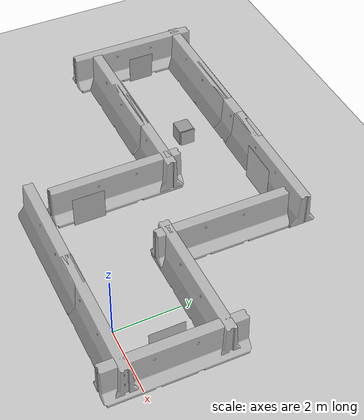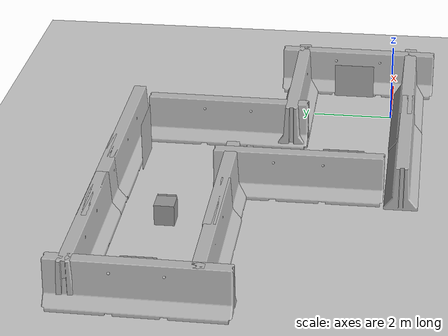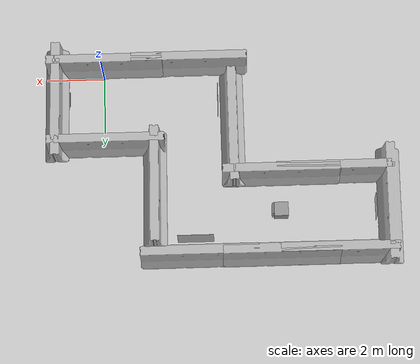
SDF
<sdf version="1.7">
 <world name="default">
  <light name="sun" type="directional">
   <pose>0 0 10 0 -0 0</pose>
   <diffuse>0.8 0.8 0.8 1</diffuse>
   <specular>0.2 0.2 0.2 1</specular>
   <attenuation>
    <range>1000</range>
    <constant>0.9</constant>
    <linear>0.01</linear>
    <quadratic>0.001</quadratic>
   </attenuation>
   <direction>-0.5 0.1 -0.9</direction>
   <spot><inner_angle>0</inner_angle><outer_angle>0</outer_angle><falloff>0</falloff></spot>
  </light>
  <model name="ground_plane">
   <static>1</static>
   <link name="link">
    <collision name="collision">
     <geometry><plane><normal>0 0 1</normal><size>100 100</size></plane></geometry>
     <surface>
      <contact><collide_bitmask>65535</collide_bitmask></contact>
      <friction><ode><mu>100</mu><mu2>50</mu2></ode></friction>
     </surface>
    </collision>
    <visual name="visual">
     <cast_shadows>0</cast_shadows>
     <geometry><plane><normal>0 0 1</normal><size>100 100</size></plane></geometry>
     <material>
      <script><uri>file://media/materials/scripts/gazebo.material</uri><name>Gazebo/Grey</name></script>
     </material>
    </visual>
   </link>
  </model>
  <gravity>0 0 -9.8</gravity>
  <magnetic_field>6e-06 2.3e-05 -4.2e-05</magnetic_field>
  <atmosphere type="adiabatic"/>
  <physics type="ode">
   <max_step_size>0.001</max_step_size>
   <real_time_factor>1</real_time_factor>
   <real_time_update_rate>1000</real_time_update_rate>
  </physics>
  <scene><ambient>0.4 0.4 0.4 1</ambient><background>0.7 0.7 0.7 1</background><shadows>1</shadows></scene>
  <spherical_coordinates>
   <surface_model>EARTH_WGS84</surface_model>
   <latitude_deg>0</latitude_deg>
   <longitude_deg>0</longitude_deg>
   <elevation>0</elevation>
   <heading_deg>0</heading_deg>
  </spherical_coordinates>
  <model name="jersey_barrier">
   <static>1</static>
   <link name="link">
    <visual name="visual">
     <geometry><mesh><uri>model://jersey_barrier/meshes/jersey_barrier.dae</uri></mesh></geometry>
    </visual>
    <collision name="upright">
     <pose>0 0 0.5715 0 -0 0</pose>
     <geometry><box><size>4.06542 0.3063 1.143</size></box></geometry>
    </collision>
    <collision name="base">
     <pose>0 0 0.032258 0 -0 0</pose>
     <geometry><box><size>4.06542 0.8107 0.064516</size></box></geometry>
    </collision>
    <collision name="base2">
     <pose>0 0 0.1 0 -0 0</pose>
     <geometry><box><size>4.06542 0.65 0.1</size></box></geometry>
    </collision>
    <collision name="base3">
     <pose>0 0 0.2 0 -0 0</pose>
     <geometry><box><size>4.06542 0.5 0.1</size></box></geometry>
    </collision>
    <collision name="left-angle">
     <pose>0 -0.224 0.2401 0.9 -0 0</pose>
     <geometry><box><size>4.06542 0.5 0.064516</size></box></geometry>
    </collision>
    <collision name="right-angle">
     <pose>0 0.224 0.2401 -0.9 0 0</pose>
     <geometry><box><size>4.06542 0.5 0.064516</size></box></geometry>
    </collision>
   </link>
   <pose>-0.047595 -0.431139 0 0 -0 0</pose>
  </model>
  <model name="jersey_barrier_0">
   <static>1</static>
   <link name="link">
    <visual name="visual">
     <geometry><mesh><uri>model://jersey_barrier/meshes/jersey_barrier.dae</uri></mesh></geometry>
    </visual>
    <collision name="upright">
     <pose>0 0 0.5715 0 -0 0</pose>
     <geometry><box><size>4.06542 0.3063 1.143</size></box></geometry>
    </collision>
    <collision name="base">
     <pose>0 0 0.032258 0 -0 0</pose>
     <geometry><box><size>4.06542 0.8107 0.064516</size></box></geometry>
    </collision>
    <collision name="base2">
     <pose>0 0 0.1 0 -0 0</pose>
     <geometry><box><size>4.06542 0.65 0.1</size></box></geometry>
    </collision>
    <collision name="base3">
     <pose>0 0 0.2 0 -0 0</pose>
     <geometry><box><size>4.06542 0.5 0.1</size></box></geometry>
    </collision>
    <collision name="left-angle">
     <pose>0 -0.224 0.2401 0.9 -0 0</pose>
     <geometry><box><size>4.06542 0.5 0.064516</size></box></geometry>
    </collision>
    <collision name="right-angle">
     <pose>0 0.224 0.2401 -0.9 0 0</pose>
     <geometry><box><size>4.06542 0.5 0.064516</size></box></geometry>
    </collision>
   </link>
   <pose>-0.051758 2.43561 0 0 -0 0</pose>
  </model>
  <model name="jersey_barrier_2_clone">
   <static>1</static>
   <link name="link">
    <visual name="visual">
     <geometry><mesh><uri>model://jersey_barrier/meshes/jersey_barrier.dae</uri></mesh></geometry>
    </visual>
    <collision name="upright">
     <pose>0 0 0.5715 0 -0 0</pose>
     <geometry><box><size>4.06542 0.3063 1.143</size></box></geometry>
    </collision>
    <collision name="base">
     <pose>0 0 0.032258 0 -0 0</pose>
     <geometry><box><size>4.06542 0.8107 0.064516</size></box></geometry>
    </collision>
    <collision name="base2">
     <pose>0 0 0.1 0 -0 0</pose>
     <geometry><box><size>4.06542 0.65 0.1</size></box></geometry>
    </collision>
    <collision name="base3">
     <pose>0 0 0.2 0 -0 0</pose>
     <geometry><box><size>4.06542 0.5 0.1</size></box></geometry>
    </collision>
    <collision name="left-angle">
     <pose>0 -0.224 0.2401 0.9 -0 0</pose>
     <geometry><box><size>4.06542 0.5 0.064516</size></box></geometry>
    </collision>
    <collision name="right-angle">
     <pose>0 0.224 0.2401 -0.9 0 0</pose>
     <geometry><box><size>4.06542 0.5 0.064516</size></box></geometry>
    </collision>
   </link>
   <pose>-1.71045 4.06927 0 0 0 -1.58175</pose>
  </model>
  <model name="jersey_barrier_clone">
   <static>1</static>
   <link name="link">
    <visual name="visual">
     <geometry><mesh><uri>model://jersey_barrier/meshes/jersey_barrier.dae</uri></mesh></geometry>
    </visual>
    <collision name="upright">
     <pose>0 0 0.5715 0 -0 0</pose>
     <geometry><box><size>4.06542 0.3063 1.143</size></box></geometry>
    </collision>
    <collision name="base">
     <pose>0 0 0.032258 0 -0 0</pose>
     <geometry><box><size>4.06542 0.8107 0.064516</size></box></geometry>
    </collision>
    <collision name="base2">
     <pose>0 0 0.1 0 -0 0</pose>
     <geometry><box><size>4.06542 0.65 0.1</size></box></geometry>
    </collision>
    <collision name="base3">
     <pose>0 0 0.2 0 -0 0</pose>
     <geometry><box><size>4.06542 0.5 0.1</size></box></geometry>
    </collision>
    <collision name="left-angle">
     <pose>0 -0.224 0.2401 0.9 -0 0</pose>
     <geometry><box><size>4.06542 0.5 0.064516</size></box></geometry>
    </collision>
    <collision name="right-angle">
     <pose>0 0.224 0.2401 -0.9 0 0</pose>
     <geometry><box><size>4.06542 0.5 0.064516</size></box></geometry>
    </collision>
   </link>
   <pose>-2.98534 -0.445537 0 0 -0 0</pose>
  </model>
  <model name="jersey_barrier_clone_clone">
   <static>1</static>
   <link name="link">
    <visual name="visual">
     <geometry><mesh><uri>model://jersey_barrier/meshes/jersey_barrier.dae</uri></mesh></geometry>
    </visual>
    <collision name="upright">
     <pose>0 0 0.5715 0 -0 0</pose>
     <geometry><box><size>4.06542 0.3063 1.143</size></box></geometry>
    </collision>
    <collision name="base">
     <pose>0 0 0.032258 0 -0 0</pose>
     <geometry><box><size>4.06542 0.8107 0.064516</size></box></geometry>
    </collision>
    <collision name="base2">
     <pose>0 0 0.1 0 -0 0</pose>
     <geometry><box><size>4.06542 0.65 0.1</size></box></geometry>
    </collision>
    <collision name="base3">
     <pose>0 0 0.2 0 -0 0</pose>
     <geometry><box><size>4.06542 0.5 0.1</size></box></geometry>
    </collision>
    <collision name="left-angle">
     <pose>0 -0.224 0.2401 0.9 -0 0</pose>
     <geometry><box><size>4.06542 0.5 0.064516</size></box></geometry>
    </collision>
    <collision name="right-angle">
     <pose>0 0.224 0.2401 -0.9 0 0</pose>
     <geometry><box><size>4.06542 0.5 0.064516</size></box></geometry>
    </collision>
   </link>
   <pose>-3.21683 6.44623 0 0 -0 0</pose>
  </model>
  <model name="jersey_barrier_2_clone_clone">
   <static>1</static>
   <link name="link">
    <visual name="visual">
     <geometry><mesh><uri>model://jersey_barrier/meshes/jersey_barrier.dae</uri></mesh></geometry>
    </visual>
    <collision name="upright">
     <pose>0 0 0.5715 0 -0 0</pose>
     <geometry><box><size>4.06542 0.3063 1.143</size></box></geometry>
    </collision>
    <collision name="base">
     <pose>0 0 0.032258 0 -0 0</pose>
     <geometry><box><size>4.06542 0.8107 0.064516</size></box></geometry>
    </collision>
    <collision name="base2">
     <pose>0 0 0.1 0 -0 0</pose>
     <geometry><box><size>4.06542 0.65 0.1</size></box></geometry>
    </collision>
    <collision name="base3">
     <pose>0 0 0.2 0 -0 0</pose>
     <geometry><box><size>4.06542 0.5 0.1</size></box></geometry>
    </collision>
    <collision name="left-angle">
     <pose>0 -0.224 0.2401 0.9 -0 0</pose>
     <geometry><box><size>4.06542 0.5 0.064516</size></box></geometry>
    </collision>
    <collision name="right-angle">
     <pose>0 0.224 0.2401 -0.9 0 0</pose>
     <geometry><box><size>4.06542 0.5 0.064516</size></box></geometry>
    </collision>
   </link>
   <pose>1.66281 0.970116 0 0 0 -1.58175</pose>
  </model>
  <model name="jersey_barrier_2_clone_clone_0">
   <static>1</static>
   <link name="link">
    <visual name="visual">
     <geometry><mesh><uri>model://jersey_barrier/meshes/jersey_barrier.dae</uri></mesh></geometry>
    </visual>
    <collision name="upright">
     <pose>0 0 0.5715 0 -0 0</pose>
     <geometry><box><size>4.06542 0.3063 1.143</size></box></geometry>
    </collision>
    <collision name="base">
     <pose>0 0 0.032258 0 -0 0</pose>
     <geometry><box><size>4.06542 0.8107 0.064516</size></box></geometry>
    </collision>
    <collision name="base2">
     <pose>0 0 0.1 0 -0 0</pose>
     <geometry><box><size>4.06542 0.65 0.1</size></box></geometry>
    </collision>
    <collision name="base3">
     <pose>0 0 0.2 0 -0 0</pose>
     <geometry><box><size>4.06542 0.5 0.1</size></box></geometry>
    </collision>
    <collision name="left-angle">
     <pose>0 -0.224 0.2401 0.9 -0 0</pose>
     <geometry><box><size>4.06542 0.5 0.064516</size></box></geometry>
    </collision>
    <collision name="right-angle">
     <pose>0 0.224 0.2401 -0.9 0 0</pose>
     <geometry><box><size>4.06542 0.5 0.064516</size></box></geometry>
    </collision>
   </link>
   <pose>-4.45139 2.02043 0 0 0 -1.57072</pose>
  </model>
  <model name="jersey_barrier_clone_clone_clone">
   <static>1</static>
   <link name="link">
    <visual name="visual">
     <geometry><mesh><uri>model://jersey_barrier/meshes/jersey_barrier.dae</uri></mesh></geometry>
    </visual>
    <collision name="upright">
     <pose>0 0 0.5715 0 -0 0</pose>
     <geometry><box><size>4.06542 0.3063 1.143</size></box></geometry>
    </collision>
    <collision name="base">
     <pose>0 0 0.032258 0 -0 0</pose>
     <geometry><box><size>4.06542 0.8107 0.064516</size></box></geometry>
    </collision>
    <collision name="base2">
     <pose>0 0 0.1 0 -0 0</pose>
     <geometry><box><size>4.06542 0.65 0.1</size></box></geometry>
    </collision>
    <collision name="base3">
     <pose>0 0 0.2 0 -0 0</pose>
     <geometry><box><size>4.06542 0.5 0.1</size></box></geometry>
    </collision>
    <collision name="left-angle">
     <pose>0 -0.224 0.2401 0.9 -0 0</pose>
     <geometry><box><size>4.06542 0.5 0.064516</size></box></geometry>
    </collision>
    <collision name="right-angle">
     <pose>0 0.224 0.2401 -0.9 0 0</pose>
     <geometry><box><size>4.06542 0.5 0.064516</size></box></geometry>
    </collision>
   </link>
   <pose>-6.07248 3.63721 0 0 -0 0</pose>
  </model>
  <model name="jersey_barrier_clone_clone_clone_0">
   <static>1</static>
   <link name="link">
    <visual name="visual">
     <geometry><mesh><uri>model://jersey_barrier/meshes/jersey_barrier.dae</uri></mesh></geometry>
    </visual>
    <collision name="upright">
     <pose>0 0 0.5715 0 -0 0</pose>
     <geometry><box><size>4.06542 0.3063 1.143</size></box></geometry>
    </collision>
    <collision name="base">
     <pose>0 0 0.032258 0 -0 0</pose>
     <geometry><box><size>4.06542 0.8107 0.064516</size></box></geometry>
    </collision>
    <collision name="base2">
     <pose>0 0 0.1 0 -0 0</pose>
     <geometry><box><size>4.06542 0.65 0.1</size></box></geometry>
    </collision>
    <collision name="base3">
     <pose>0 0 0.2 0 -0 0</pose>
     <geometry><box><size>4.06542 0.5 0.1</size></box></geometry>
    </collision>
    <collision name="left-angle">
     <pose>0 -0.224 0.2401 0.9 -0 0</pose>
     <geometry><box><size>4.06542 0.5 0.064516</size></box></geometry>
    </collision>
    <collision name="right-angle">
     <pose>0 0.224 0.2401 -0.9 0 0</pose>
     <geometry><box><size>4.06542 0.5 0.064516</size></box></geometry>
    </collision>
   </link>
   <pose>-5.99928 6.45831 0 0 -0 0</pose>
  </model>
  <model name="static_box">
   <link name="link">
    <inertial>
     <mass>1</mass>
     <inertia>
      <ixx>0.166667</ixx>
      <ixy>0</ixy>
      <ixz>0</ixz>
      <iyy>0.166667</iyy>
      <iyz>0</iyz>
      <izz>0.166667</izz>
     </inertia>
    </inertial>
    <visual name="visual">
     <geometry><box><size>0.487099 0.478875 1</size></box></geometry>
     <material>
      <script><name>Gazebo/Grey</name><uri>file://media/materials/scripts/gazebo.material</uri></script>
      <shader type="pixel"/>
     </material>
    </visual>
    <collision name="collision">
     <geometry><box><size>0.487099 0.478875 1</size></box></geometry>
     <surface>
      <friction>
       <ode><mu>1</mu><mu2>1</mu2><fdir1>0 0 0</fdir1><slip1>0</slip1><slip2>0</slip2></ode>
       <torsional>
        <coefficient>1</coefficient>
        <patch_radius>0</patch_radius>
        <surface_radius>0</surface_radius>
        <use_patch_radius>1</use_patch_radius>
        <ode><slip>0</slip></ode>
       </torsional>
      </friction>
      <bounce><restitution_coefficient>0</restitution_coefficient><threshold>1e+06</threshold></bounce>
      <contact>
       <collide_without_contact>0</collide_without_contact>
       <collide_without_contact_bitmask>1</collide_without_contact_bitmask>
       <collide_bitmask>1</collide_bitmask>
       <ode>
        <soft_cfm>0</soft_cfm>
        <soft_erp>0.2</soft_erp>
        <kp>1e+13</kp>
        <kd>1</kd>
        <max_vel>0.01</max_vel>
        <min_depth>0</min_depth>
       </ode>
       <bullet>
        <split_impulse>1</split_impulse>
        <split_impulse_penetration_threshold>-0.01</split_impulse_penetration_threshold>
        <soft_cfm>0</soft_cfm>
        <soft_erp>0.2</soft_erp>
        <kp>1e+13</kp>
        <kd>1</kd>
       </bullet>
      </contact>
     </surface>
    </collision>
   </link>
   <static>1</static>
   <pose>-6.03066 4.97412 0 0 -0 0</pose>
  </model>
  <model name="jersey_barrier_clone_clone_clone_0_clone">
   <static>1</static>
   <link name="link">
    <visual name="visual">
     <geometry><mesh><uri>model://jersey_barrier/meshes/jersey_barrier.dae</uri></mesh></geometry>
    </visual>
    <collision name="upright">
     <pose>0 0 0.5715 0 -0 0</pose>
     <geometry><box><size>4.06542 0.3063 1.143</size></box></geometry>
    </collision>
    <collision name="base">
     <pose>0 0 0.032258 0 -0 0</pose>
     <geometry><box><size>4.06542 0.8107 0.064516</size></box></geometry>
    </collision>
    <collision name="base2">
     <pose>0 0 0.1 0 -0 0</pose>
     <geometry><box><size>4.06542 0.65 0.1</size></box></geometry>
    </collision>
    <collision name="base3">
     <pose>0 0 0.2 0 -0 0</pose>
     <geometry><box><size>4.06542 0.5 0.1</size></box></geometry>
    </collision>
    <collision name="left-angle">
     <pose>0 -0.224 0.2401 0.9 -0 0</pose>
     <geometry><box><size>4.06542 0.5 0.064516</size></box></geometry>
    </collision>
    <collision name="right-angle">
     <pose>0 0.224 0.2401 -0.9 0 0</pose>
     <geometry><box><size>4.06542 0.5 0.064516</size></box></geometry>
    </collision>
   </link>
   <pose>-7.94987 6.45606 0 0 -0 0</pose>
  </model>
  <model name="jersey_barrier_clone_clone_clone_0_clone_clone">
   <static>1</static>
   <link name="link">
    <visual name="visual">
     <geometry><mesh><uri>model://jersey_barrier/meshes/jersey_barrier.dae</uri></mesh></geometry>
    </visual>
    <collision name="upright">
     <pose>0 0 0.5715 0 -0 0</pose>
     <geometry><box><size>4.06542 0.3063 1.143</size></box></geometry>
    </collision>
    <collision name="base">
     <pose>0 0 0.032258 0 -0 0</pose>
     <geometry><box><size>4.06542 0.8107 0.064516</size></box></geometry>
    </collision>
    <collision name="base2">
     <pose>0 0 0.1 0 -0 0</pose>
     <geometry><box><size>4.06542 0.65 0.1</size></box></geometry>
    </collision>
    <collision name="base3">
     <pose>0 0 0.2 0 -0 0</pose>
     <geometry><box><size>4.06542 0.5 0.1</size></box></geometry>
    </collision>
    <collision name="left-angle">
     <pose>0 -0.224 0.2401 0.9 -0 0</pose>
     <geometry><box><size>4.06542 0.5 0.064516</size></box></geometry>
    </collision>
    <collision name="right-angle">
     <pose>0 0.224 0.2401 -0.9 0 0</pose>
     <geometry><box><size>4.06542 0.5 0.064516</size></box></geometry>
    </collision>
   </link>
   <pose>-7.91974 3.61379 0 0 -0 0</pose>
  </model>
  <model name="jersey_barrier_2_clone_clone_1">
   <static>1</static>
   <link name="link">
    <visual name="visual">
     <geometry><mesh><uri>model://jersey_barrier/meshes/jersey_barrier.dae</uri></mesh></geometry>
    </visual>
    <collision name="upright">
     <pose>0 0 0.5715 0 -0 0</pose>
     <geometry><box><size>4.06542 0.3063 1.143</size></box></geometry>
    </collision>
    <collision name="base">
     <pose>0 0 0.032258 0 -0 0</pose>
     <geometry><box><size>4.06542 0.8107 0.064516</size></box></geometry>
    </collision>
    <collision name="base2">
     <pose>0 0 0.1 0 -0 0</pose>
     <geometry><box><size>4.06542 0.65 0.1</size></box></geometry>
    </collision>
    <collision name="base3">
     <pose>0 0 0.2 0 -0 0</pose>
     <geometry><box><size>4.06542 0.5 0.1</size></box></geometry>
    </collision>
    <collision name="left-angle">
     <pose>0 -0.224 0.2401 0.9 -0 0</pose>
     <geometry><box><size>4.06542 0.5 0.064516</size></box></geometry>
    </collision>
    <collision name="right-angle">
     <pose>0 0.224 0.2401 -0.9 0 0</pose>
     <geometry><box><size>4.06542 0.5 0.064516</size></box></geometry>
    </collision>
   </link>
   <pose>-9.78942 4.89843 0 0 0 -1.58175</pose>
  </model>
  <model name="marker12_static">
   <link name="marker">
    <inertial>
     <mass>0.1</mass>
     <inertia><ixx>0</ixx><ixy>0</ixy><ixz>0</ixz><iyy>0</iyy><iyz>0</iyz><izz>0</izz></inertia>
    </inertial>
    <self_collide>1</self_collide>
    <visual name="visual">
     <geometry><box><size>1.01068 0.977481 0.001</size></box></geometry>
     <material>
      <script>
       <uri>model://marker12/material/scripts</uri>
       <uri>model://marker12/material/textures</uri>
       <name>Aruco/marker12</name>
      </script>
      <shader type="pixel"/>
     </material>
    </visual>
    <collision name="collision">
     <geometry><box><size>1.01068 0.977481 0.02</size></box></geometry>
     <surface>
      <friction>
       <ode><mu>1</mu><mu2>1</mu2><fdir1>0 0 0</fdir1><slip1>0</slip1><slip2>0</slip2></ode>
       <torsional>
        <coefficient>1</coefficient>
        <patch_radius>0</patch_radius>
        <surface_radius>0</surface_radius>
        <use_patch_radius>1</use_patch_radius>
        <ode><slip>0</slip></ode>
       </torsional>
      </friction>
      <bounce><restitution_coefficient>0</restitution_coefficient><threshold>1e+06</threshold></bounce>
      <contact>
       <collide_without_contact>0</collide_without_contact>
       <collide_without_contact_bitmask>1</collide_without_contact_bitmask>
       <collide_bitmask>1</collide_bitmask>
       <ode>
        <soft_cfm>0</soft_cfm>
        <soft_erp>0.2</soft_erp>
        <kp>1e+13</kp>
        <kd>1</kd>
        <max_vel>0.01</max_vel>
        <min_depth>0</min_depth>
       </ode>
       <bullet>
        <split_impulse>1</split_impulse>
        <split_impulse_penetration_threshold>-0.01</split_impulse_penetration_threshold>
        <soft_cfm>0</soft_cfm>
        <soft_erp>0.2</soft_erp>
        <kp>1e+13</kp>
        <kd>1</kd>
       </bullet>
      </contact>
     </surface>
    </collision>
   </link>
   <static>1</static>
   <pose>-3.96602 0.988219 0.505432 -3.14159 -1.55678 3.14159</pose>
  </model>
  <model name="marker11_static">
   <link name="marker">
    <inertial>
     <mass>0.1</mass>
     <inertia><ixx>0</ixx><ixy>0</ixy><ixz>0</ixz><iyy>0</iyy><iyz>0</iyz><izz>0</izz></inertia>
    </inertial>
    <self_collide>1</self_collide>
    <visual name="visual">
     <geometry><box><size>0.946188 1.03801 0.001</size></box></geometry>
     <material>
      <script>
       <uri>model://marker11/material/scripts</uri>
       <uri>model://marker11/material/textures</uri>
       <name>Aruco/marker11</name>
      </script>
      <shader type="pixel"/>
     </material>
    </visual>
    <collision name="collision">
     <geometry><box><size>0.946188 1.03801 0.02</size></box></geometry>
     <surface>
      <friction>
       <ode><mu>1</mu><mu2>1</mu2><fdir1>0 0 0</fdir1><slip1>0</slip1><slip2>0</slip2></ode>
       <torsional>
        <coefficient>1</coefficient>
        <patch_radius>0</patch_radius>
        <surface_radius>0</surface_radius>
        <use_patch_radius>1</use_patch_radius>
        <ode><slip>0</slip></ode>
       </torsional>
      </friction>
      <bounce><restitution_coefficient>0</restitution_coefficient><threshold>1e+06</threshold></bounce>
      <contact>
       <collide_without_contact>0</collide_without_contact>
       <collide_without_contact_bitmask>1</collide_without_contact_bitmask>
       <collide_bitmask>1</collide_bitmask>
       <ode>
        <soft_cfm>0</soft_cfm>
        <soft_erp>0.2</soft_erp>
        <kp>1e+13</kp>
        <kd>1</kd>
        <max_vel>0.01</max_vel>
        <min_depth>0</min_depth>
       </ode>
       <bullet>
        <split_impulse>1</split_impulse>
        <split_impulse_penetration_threshold>-0.01</split_impulse_penetration_threshold>
        <soft_cfm>0</soft_cfm>
        <soft_erp>0.2</soft_erp>
        <kp>1e+13</kp>
        <kd>1</kd>
       </bullet>
      </contact>
     </surface>
    </collision>
   </link>
   <static>1</static>
   <pose>1.17428 1.04493 0.471743 3.14159 -1.47117 3.14159</pose>
  </model>
  <model name="marker13_static">
   <link name="marker">
    <inertial>
     <mass>0.1</mass>
     <inertia><ixx>0</ixx><ixy>0</ixy><ixz>0</ixz><iyy>0</iyy><iyz>0</iyz><izz>0</izz></inertia>
    </inertial>
    <self_collide>1</self_collide>
    <visual name="visual">
     <geometry><box><size>1.23222 1.23053 0.001</size></box></geometry>
     <material>
      <script>
       <uri>model://marker13/material/scripts</uri>
       <uri>model://marker13/material/textures</uri>
       <name>Aruco/marker13</name>
      </script>
      <shader type="pixel"/>
     </material>
    </visual>
    <collision name="collision">
     <geometry><box><size>1.23222 1.23053 0.02</size></box></geometry>
     <surface>
      <friction>
       <ode><mu>1</mu><mu2>1</mu2><fdir1>0 0 0</fdir1><slip1>0</slip1><slip2>0</slip2></ode>
       <torsional>
        <coefficient>1</coefficient>
        <patch_radius>0</patch_radius>
        <surface_radius>0</surface_radius>
        <use_patch_radius>1</use_patch_radius>
        <ode><slip>0</slip></ode>
       </torsional>
      </friction>
      <bounce><restitution_coefficient>0</restitution_coefficient><threshold>1e+06</threshold></bounce>
      <contact>
       <collide_without_contact>0</collide_without_contact>
       <collide_without_contact_bitmask>1</collide_without_contact_bitmask>
       <collide_bitmask>1</collide_bitmask>
       <ode>
        <soft_cfm>0</soft_cfm>
        <soft_erp>0.2</soft_erp>
        <kp>1e+13</kp>
        <kd>1</kd>
        <max_vel>0.01</max_vel>
        <min_depth>0</min_depth>
       </ode>
       <bullet>
        <split_impulse>1</split_impulse>
        <split_impulse_penetration_threshold>-0.01</split_impulse_penetration_threshold>
        <soft_cfm>0</soft_cfm>
        <soft_erp>0.2</soft_erp>
        <kp>1e+13</kp>
        <kd>1</kd>
       </bullet>
      </contact>
     </surface>
    </collision>
   </link>
   <static>1</static>
   <pose>-3.07586 5.95822 0.616148 3.14159 -1.56613 1.57019</pose>
  </model>
  <model name="marker14_static">
   <link name="marker">
    <inertial>
     <mass>0.1</mass>
     <inertia><ixx>0</ixx><ixy>0</ixy><ixz>0</ixz><iyy>0</iyy><iyz>0</iyz><izz>0</izz></inertia>
    </inertial>
    <self_collide>1</self_collide>
    <visual name="visual">
     <geometry><box><size>0.510996 0.454609 0.001</size></box></geometry>
     <material>
      <script>
       <uri>model://marker14/material/scripts</uri>
       <uri>model://marker14/material/textures</uri>
       <name>Aruco/marker14</name>
      </script>
      <shader type="pixel"/>
     </material>
    </visual>
    <collision name="collision">
     <geometry><box><size>0.510996 0.454609 0.02</size></box></geometry>
     <surface>
      <friction>
       <ode><mu>1</mu><mu2>1</mu2><fdir1>0 0 0</fdir1><slip1>0</slip1><slip2>0</slip2></ode>
       <torsional>
        <coefficient>1</coefficient>
        <patch_radius>0</patch_radius>
        <surface_radius>0</surface_radius>
        <use_patch_radius>1</use_patch_radius>
        <ode><slip>0</slip></ode>
       </torsional>
      </friction>
      <bounce><restitution_coefficient>0</restitution_coefficient><threshold>1e+06</threshold></bounce>
      <contact>
       <collide_without_contact>0</collide_without_contact>
       <collide_without_contact_bitmask>1</collide_without_contact_bitmask>
       <collide_bitmask>1</collide_bitmask>
       <ode>
        <soft_cfm>0</soft_cfm>
        <soft_erp>0.2</soft_erp>
        <kp>1e+13</kp>
        <kd>1</kd>
        <max_vel>0.01</max_vel>
        <min_depth>0</min_depth>
       </ode>
       <bullet>
        <split_impulse>1</split_impulse>
        <split_impulse_penetration_threshold>-0.01</split_impulse_penetration_threshold>
        <soft_cfm>0</soft_cfm>
        <soft_erp>0.2</soft_erp>
        <kp>1e+13</kp>
        <kd>1</kd>
       </bullet>
      </contact>
     </surface>
    </collision>
   </link>
   <static>0</static>
   <pose>-5.72724 4.98549 0.255682 -3.14142 -1.5414 3.14142</pose>
  </model>
  <model name="marker15_static">
   <link name="marker">
    <inertial>
     <mass>0.1</mass>
     <inertia><ixx>0</ixx><ixy>0</ixy><ixz>0</ixz><iyy>0</iyy><iyz>0</iyz><izz>0</izz></inertia>
    </inertial>
    <self_collide>1</self_collide>
    <visual name="visual">
     <geometry><box><size>0.938826 0.801858 0.001</size></box></geometry>
     <material>
      <script>
       <uri>model://marker15/material/scripts</uri>
       <uri>model://marker15/material/textures</uri>
       <name>Aruco/marker15</name>
      </script>
      <shader type="pixel"/>
     </material>
    </visual>
    <collision name="collision">
     <geometry><box><size>0.938826 0.801858 0.02</size></box></geometry>
     <surface>
      <friction>
       <ode><mu>1</mu><mu2>1</mu2><fdir1>0 0 0</fdir1><slip1>0</slip1><slip2>0</slip2></ode>
       <torsional>
        <coefficient>1</coefficient>
        <patch_radius>0</patch_radius>
        <surface_radius>0</surface_radius>
        <use_patch_radius>1</use_patch_radius>
        <ode><slip>0</slip></ode>
       </torsional>
      </friction>
      <bounce><restitution_coefficient>0</restitution_coefficient><threshold>1e+06</threshold></bounce>
      <contact>
       <collide_without_contact>0</collide_without_contact>
       <collide_without_contact_bitmask>1</collide_without_contact_bitmask>
       <collide_bitmask>1</collide_bitmask>
       <ode>
        <soft_cfm>0</soft_cfm>
        <soft_erp>0.2</soft_erp>
        <kp>1e+13</kp>
        <kd>1</kd>
        <max_vel>0.01</max_vel>
        <min_depth>0</min_depth>
       </ode>
       <bullet>
        <split_impulse>1</split_impulse>
        <split_impulse_penetration_threshold>-0.01</split_impulse_penetration_threshold>
        <soft_cfm>0</soft_cfm>
        <soft_erp>0.2</soft_erp>
        <kp>1e+13</kp>
        <kd>1</kd>
       </bullet>
      </contact>
     </surface>
    </collision>
   </link>
   <static>0</static>
   <pose>-9.28304 4.98586 0.469417 -4e-06 -1.52881 4e-06</pose>
  </model>
 </world>
</sdf>
